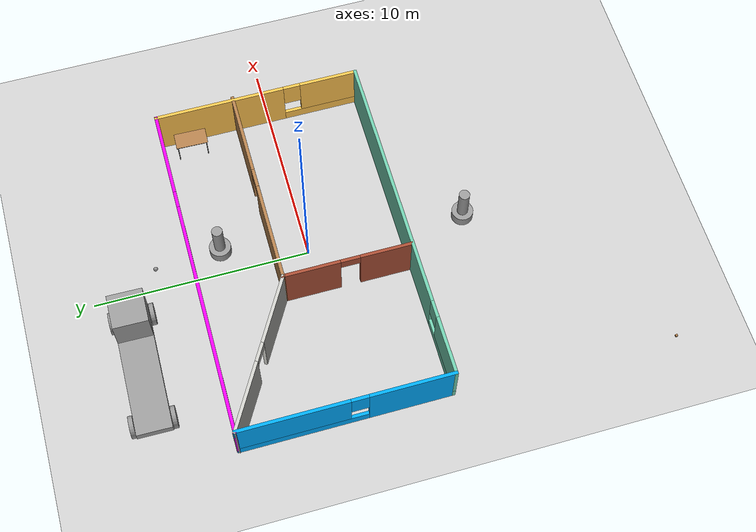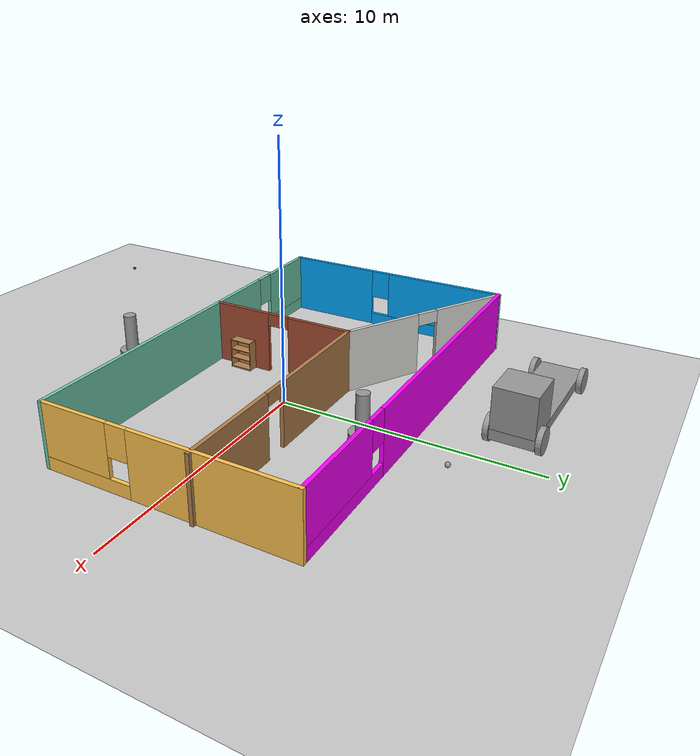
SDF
<sdf version="1.6">
 <world name="default">
  <plugin name="hello_world" filename="libhello_world.so"/>
  <light name="sun" type="directional">
   <pose>0 0 10 0 -0 0</pose>
   <diffuse>0.8 0.8 0.8 1</diffuse>
   <specular>0.2 0.2 0.2 1</specular>
   <attenuation>
    <range>1000</range>
    <constant>0.9</constant>
    <linear>0.01</linear>
    <quadratic>0.001</quadratic>
   </attenuation>
   <direction>-0.5 0.1 -0.9</direction>
  </light>
  <model name="ground_plane">
   <static>1</static>
   <link name="link">
    <collision name="collision">
     <geometry><plane><normal>0 0 1</normal><size>100 100</size></plane></geometry>
     <surface>
      <contact><collide_bitmask>65535</collide_bitmask></contact>
      <friction><ode><mu>100</mu><mu2>50</mu2></ode></friction>
     </surface>
    </collision>
    <visual name="visual">
     <cast_shadows>0</cast_shadows>
     <geometry><plane><normal>0 0 1</normal><size>100 100</size></plane></geometry>
     <material>
      <script><uri>file://media/materials/scripts/gazebo.material</uri><name>Gazebo/Grey</name></script>
     </material>
    </visual>
   </link>
  </model>
  <gravity>0 0 -9.8</gravity>
  <magnetic_field>6e-06 2.3e-05 -4.2e-05</magnetic_field>
  <atmosphere type="adiabatic"/>
  <physics name="default_physics" default="0" type="ode">
   <max_step_size>0.001</max_step_size>
   <real_time_factor>1</real_time_factor>
   <real_time_update_rate>1000</real_time_update_rate>
  </physics>
  <scene><ambient>0.4 0.4 0.4 1</ambient><background>0.7 0.7 0.7 1</background><shadows>1</shadows></scene>
  <spherical_coordinates>
   <surface_model>EARTH_WGS84</surface_model>
   <latitude_deg>0</latitude_deg>
   <longitude_deg>0</longitude_deg>
   <elevation>0</elevation>
   <heading_deg>0</heading_deg>
  </spherical_coordinates>
  <model name="truck">
   <link name="link_0">
    <pose>-2e-06 -3e-06 1 0 -0 0</pose>
    <inertial>
     <mass>1</mass>
     <inertia>
      <ixx>0.166667</ixx>
      <ixy>0</ixy>
      <ixz>0</ixz>
      <iyy>0.166667</iyy>
      <iyz>0</iyz>
      <izz>0.166667</izz>
     </inertia>
    </inertial>
    <visual name="visual">
     <geometry><box><size>1.6 1.6 1.6</size></box></geometry>
     <material>
      <lighting>1</lighting>
      <script><uri>file://media/materials/scripts/gazebo.material</uri><name>Gazebo/Grey</name></script>
      <shader type="pixel"><normal_map>__default__</normal_map></shader>
      <ambient>0.3 0.3 0.3 1</ambient>
      <diffuse>0.7 0.7 0.7 1</diffuse>
      <specular>0.01 0.01 0.01 1</specular>
      <emissive>0 0 0 1</emissive>
     </material>
    </visual>
    <collision name="collision">
     <geometry><box><size>1.6 1.6 1.6</size></box></geometry>
     <surface>
      <friction>
       <ode><mu>1</mu><mu2>1</mu2><fdir1>0 0 0</fdir1><slip1>0</slip1><slip2>0</slip2></ode>
       <torsional>
        <coefficient>1</coefficient>
        <patch_radius>0</patch_radius>
        <surface_radius>0</surface_radius>
        <use_patch_radius>1</use_patch_radius>
        <ode><slip>0</slip></ode>
       </torsional>
      </friction>
      <bounce><restitution_coefficient>0</restitution_coefficient><threshold>1e+06</threshold></bounce>
      <contact>
       <collide_without_contact>0</collide_without_contact>
       <collide_without_contact_bitmask>1</collide_without_contact_bitmask>
       <collide_bitmask>1</collide_bitmask>
       <ode>
        <soft_cfm>0</soft_cfm>
        <soft_erp>0.2</soft_erp>
        <kp>1e+13</kp>
        <kd>1</kd>
        <max_vel>0.01</max_vel>
        <min_depth>0</min_depth>
       </ode>
       <bullet>
        <split_impulse>1</split_impulse>
        <split_impulse_penetration_threshold>-0.01</split_impulse_penetration_threshold>
        <soft_cfm>0</soft_cfm>
        <soft_erp>0.2</soft_erp>
        <kp>1e+13</kp>
        <kd>1</kd>
       </bullet>
      </contact>
     </surface>
    </collision>
   </link>
   <link name="link_1">
    <pose>-2e-06 2.2 0 0 -0 0</pose>
    <inertial>
     <mass>1</mass>
     <inertia>
      <ixx>0.166667</ixx>
      <ixy>0</ixy>
      <ixz>0</ixz>
      <iyy>0.166667</iyy>
      <iyz>0</iyz>
      <izz>0.166667</izz>
     </inertia>
    </inertial>
    <visual name="visual">
     <geometry><box><size>1.6 6 0.4</size></box></geometry>
     <material>
      <lighting>1</lighting>
      <script><uri>file://media/materials/scripts/gazebo.material</uri><name>Gazebo/Grey</name></script>
      <shader type="pixel"><normal_map>__default__</normal_map></shader>
      <ambient>0.3 0.3 0.3 1</ambient>
      <diffuse>0.7 0.7 0.7 1</diffuse>
      <specular>0.01 0.01 0.01 1</specular>
      <emissive>0 0 0 1</emissive>
     </material>
    </visual>
    <collision name="collision">
     <geometry><box><size>1.6 6 0.4</size></box></geometry>
     <surface>
      <friction>
       <ode><mu>1</mu><mu2>1</mu2><fdir1>0 0 0</fdir1><slip1>0</slip1><slip2>0</slip2></ode>
       <torsional>
        <coefficient>1</coefficient>
        <patch_radius>0</patch_radius>
        <surface_radius>0</surface_radius>
        <use_patch_radius>1</use_patch_radius>
        <ode><slip>0</slip></ode>
       </torsional>
      </friction>
      <bounce><restitution_coefficient>0</restitution_coefficient><threshold>1e+06</threshold></bounce>
      <contact>
       <collide_without_contact>0</collide_without_contact>
       <collide_without_contact_bitmask>1</collide_without_contact_bitmask>
       <collide_bitmask>1</collide_bitmask>
       <ode>
        <soft_cfm>0</soft_cfm>
        <soft_erp>0.2</soft_erp>
        <kp>1e+13</kp>
        <kd>1</kd>
        <max_vel>0.01</max_vel>
        <min_depth>0</min_depth>
       </ode>
       <bullet>
        <split_impulse>1</split_impulse>
        <split_impulse_penetration_threshold>-0.01</split_impulse_penetration_threshold>
        <soft_cfm>0</soft_cfm>
        <soft_erp>0.2</soft_erp>
        <kp>1e+13</kp>
        <kd>1</kd>
       </bullet>
      </contact>
     </surface>
    </collision>
   </link>
   <link name="link_2">
    <pose>0.900094 -0.299986 -2e-06 1.5707 0 1.5707</pose>
    <inertial>
     <mass>1</mass>
     <inertia><ixx>0.145833</ixx><ixy>0</ixy><ixz>0</ixz><iyy>0.145833</iyy><iyz>0</iyz><izz>0.125</izz></inertia>
    </inertial>
    <visual name="visual">
     <geometry><cylinder><radius>0.5</radius><length>0.2</length></cylinder></geometry>
     <material>
      <lighting>1</lighting>
      <script><uri>file://media/materials/scripts/gazebo.material</uri><name>Gazebo/Grey</name></script>
      <shader type="pixel"><normal_map>__default__</normal_map></shader>
      <ambient>0.3 0.3 0.3 1</ambient>
      <diffuse>0.7 0.7 0.7 1</diffuse>
      <specular>0.01 0.01 0.01 1</specular>
      <emissive>0 0 0 1</emissive>
     </material>
    </visual>
    <collision name="collision">
     <geometry><cylinder><radius>0.5</radius><length>0.2</length></cylinder></geometry>
     <surface>
      <friction>
       <ode><mu>1</mu><mu2>1</mu2><fdir1>0 0 0</fdir1><slip1>0</slip1><slip2>0</slip2></ode>
       <torsional>
        <coefficient>1</coefficient>
        <patch_radius>0</patch_radius>
        <surface_radius>0</surface_radius>
        <use_patch_radius>1</use_patch_radius>
        <ode><slip>0</slip></ode>
       </torsional>
      </friction>
      <bounce><restitution_coefficient>0</restitution_coefficient><threshold>1e+06</threshold></bounce>
      <contact>
       <collide_without_contact>0</collide_without_contact>
       <collide_without_contact_bitmask>1</collide_without_contact_bitmask>
       <collide_bitmask>1</collide_bitmask>
       <ode>
        <soft_cfm>0</soft_cfm>
        <soft_erp>0.2</soft_erp>
        <kp>1e+13</kp>
        <kd>1</kd>
        <max_vel>0.01</max_vel>
        <min_depth>0</min_depth>
       </ode>
       <bullet>
        <split_impulse>1</split_impulse>
        <split_impulse_penetration_threshold>-0.01</split_impulse_penetration_threshold>
        <soft_cfm>0</soft_cfm>
        <soft_erp>0.2</soft_erp>
        <kp>1e+13</kp>
        <kd>1</kd>
       </bullet>
      </contact>
     </surface>
    </collision>
   </link>
   <link name="link_2_clone">
    <pose>-0.940098 -0.299986 -2e-06 1.5707 0 1.5707</pose>
    <inertial>
     <mass>1</mass>
     <inertia><ixx>0.145833</ixx><ixy>0</ixy><ixz>0</ixz><iyy>0.145833</iyy><iyz>0</iyz><izz>0.125</izz></inertia>
    </inertial>
    <visual name="visual">
     <geometry><cylinder><radius>0.5</radius><length>0.2</length></cylinder></geometry>
     <material>
      <lighting>1</lighting>
      <script><uri>file://media/materials/scripts/gazebo.material</uri><name>Gazebo/Grey</name></script>
      <shader type="pixel"><normal_map>__default__</normal_map></shader>
      <ambient>0.3 0.3 0.3 1</ambient>
      <diffuse>0.7 0.7 0.7 1</diffuse>
      <specular>0.01 0.01 0.01 1</specular>
      <emissive>0 0 0 1</emissive>
     </material>
    </visual>
    <collision name="collision">
     <geometry><cylinder><radius>0.5</radius><length>0.2</length></cylinder></geometry>
     <surface>
      <friction>
       <ode><mu>1</mu><mu2>1</mu2><fdir1>0 0 0</fdir1><slip1>0</slip1><slip2>0</slip2></ode>
       <torsional>
        <coefficient>1</coefficient>
        <patch_radius>0</patch_radius>
        <surface_radius>0</surface_radius>
        <use_patch_radius>1</use_patch_radius>
        <ode><slip>0</slip></ode>
       </torsional>
      </friction>
      <bounce><restitution_coefficient>0</restitution_coefficient><threshold>1e+06</threshold></bounce>
      <contact>
       <collide_without_contact>0</collide_without_contact>
       <collide_without_contact_bitmask>1</collide_without_contact_bitmask>
       <collide_bitmask>1</collide_bitmask>
       <ode>
        <soft_cfm>0</soft_cfm>
        <soft_erp>0.2</soft_erp>
        <kp>1e+13</kp>
        <kd>1</kd>
        <max_vel>0.01</max_vel>
        <min_depth>0</min_depth>
       </ode>
       <bullet>
        <split_impulse>1</split_impulse>
        <split_impulse_penetration_threshold>-0.01</split_impulse_penetration_threshold>
        <soft_cfm>0</soft_cfm>
        <soft_erp>0.2</soft_erp>
        <kp>1e+13</kp>
        <kd>1</kd>
       </bullet>
      </contact>
     </surface>
    </collision>
   </link>
   <link name="link_2_clone_0">
    <pose>-0.940098 4.69999 -2e-06 1.5707 0 1.5707</pose>
    <inertial>
     <mass>1</mass>
     <inertia><ixx>0.145833</ixx><ixy>0</ixy><ixz>0</ixz><iyy>0.145833</iyy><iyz>0</iyz><izz>0.125</izz></inertia>
    </inertial>
    <visual name="visual">
     <geometry><cylinder><radius>0.5</radius><length>0.2</length></cylinder></geometry>
     <material>
      <lighting>1</lighting>
      <script><uri>file://media/materials/scripts/gazebo.material</uri><name>Gazebo/Grey</name></script>
      <shader type="pixel"><normal_map>__default__</normal_map></shader>
      <ambient>0.3 0.3 0.3 1</ambient>
      <diffuse>0.7 0.7 0.7 1</diffuse>
      <specular>0.01 0.01 0.01 1</specular>
      <emissive>0 0 0 1</emissive>
     </material>
    </visual>
    <collision name="collision">
     <geometry><cylinder><radius>0.5</radius><length>0.2</length></cylinder></geometry>
     <surface>
      <friction>
       <ode><mu>1</mu><mu2>1</mu2><fdir1>0 0 0</fdir1><slip1>0</slip1><slip2>0</slip2></ode>
       <torsional>
        <coefficient>1</coefficient>
        <patch_radius>0</patch_radius>
        <surface_radius>0</surface_radius>
        <use_patch_radius>1</use_patch_radius>
        <ode><slip>0</slip></ode>
       </torsional>
      </friction>
      <bounce><restitution_coefficient>0</restitution_coefficient><threshold>1e+06</threshold></bounce>
      <contact>
       <collide_without_contact>0</collide_without_contact>
       <collide_without_contact_bitmask>1</collide_without_contact_bitmask>
       <collide_bitmask>1</collide_bitmask>
       <ode>
        <soft_cfm>0</soft_cfm>
        <soft_erp>0.2</soft_erp>
        <kp>1e+13</kp>
        <kd>1</kd>
        <max_vel>0.01</max_vel>
        <min_depth>0</min_depth>
       </ode>
       <bullet>
        <split_impulse>1</split_impulse>
        <split_impulse_penetration_threshold>-0.01</split_impulse_penetration_threshold>
        <soft_cfm>0</soft_cfm>
        <soft_erp>0.2</soft_erp>
        <kp>1e+13</kp>
        <kd>1</kd>
       </bullet>
      </contact>
     </surface>
    </collision>
   </link>
   <link name="link_2_clone_1">
    <pose>0.900094 4.69999 -2e-06 1.5707 0 1.5707</pose>
    <inertial>
     <mass>1</mass>
     <inertia><ixx>0.145833</ixx><ixy>0</ixy><ixz>0</ixz><iyy>0.145833</iyy><iyz>0</iyz><izz>0.125</izz></inertia>
    </inertial>
    <visual name="visual">
     <geometry><cylinder><radius>0.5</radius><length>0.2</length></cylinder></geometry>
     <material>
      <lighting>1</lighting>
      <script><uri>file://media/materials/scripts/gazebo.material</uri><name>Gazebo/Grey</name></script>
      <shader type="pixel"><normal_map>__default__</normal_map></shader>
      <ambient>0.3 0.3 0.3 1</ambient>
      <diffuse>0.7 0.7 0.7 1</diffuse>
      <specular>0.01 0.01 0.01 1</specular>
      <emissive>0 0 0 1</emissive>
     </material>
    </visual>
    <collision name="collision">
     <geometry><cylinder><radius>0.5</radius><length>0.2</length></cylinder></geometry>
     <surface>
      <friction>
       <ode><mu>1</mu><mu2>1</mu2><fdir1>0 0 0</fdir1><slip1>0</slip1><slip2>0</slip2></ode>
       <torsional>
        <coefficient>1</coefficient>
        <patch_radius>0</patch_radius>
        <surface_radius>0</surface_radius>
        <use_patch_radius>1</use_patch_radius>
        <ode><slip>0</slip></ode>
       </torsional>
      </friction>
      <bounce><restitution_coefficient>0</restitution_coefficient><threshold>1e+06</threshold></bounce>
      <contact>
       <collide_without_contact>0</collide_without_contact>
       <collide_without_contact_bitmask>1</collide_without_contact_bitmask>
       <collide_bitmask>1</collide_bitmask>
       <ode>
        <soft_cfm>0</soft_cfm>
        <soft_erp>0.2</soft_erp>
        <kp>1e+13</kp>
        <kd>1</kd>
        <max_vel>0.01</max_vel>
        <min_depth>0</min_depth>
       </ode>
       <bullet>
        <split_impulse>1</split_impulse>
        <split_impulse_penetration_threshold>-0.01</split_impulse_penetration_threshold>
        <soft_cfm>0</soft_cfm>
        <soft_erp>0.2</soft_erp>
        <kp>1e+13</kp>
        <kd>1</kd>
       </bullet>
      </contact>
     </surface>
    </collision>
   </link>
   <joint name="link_0_JOINT_1" type="fixed">
    <parent>link_0</parent>
    <child>link_1</child>
    <physics>
     <ode><limit><cfm>0</cfm><erp>0.2</erp></limit><suspension><cfm>0</cfm><erp>0.2</erp></suspension></ode>
    </physics>
   </joint>
   <joint name="link_1_JOINT_1" type="revolute">
    <parent>link_1</parent>
    <child>link_2</child>
    <axis>
     <xyz>0 0 1</xyz>
     <use_parent_model_frame>0</use_parent_model_frame>
     <limit>
      <lower>-1.79769e+308</lower>
      <upper>1.79769e+308</upper>
      <effort>-1</effort>
      <velocity>-1</velocity>
     </limit>
     <dynamics>
      <spring_reference>0</spring_reference>
      <spring_stiffness>0</spring_stiffness>
      <damping>0</damping>
      <friction>0</friction>
     </dynamics>
    </axis>
    <physics>
     <ode><limit><cfm>0</cfm><erp>0.2</erp></limit><suspension><cfm>0</cfm><erp>0.2</erp></suspension></ode>
    </physics>
   </joint>
   <joint name="link_1_JOINT_2" type="revolute">
    <parent>link_1</parent>
    <child>link_2_clone_1</child>
    <axis>
     <xyz>0 0 1</xyz>
     <use_parent_model_frame>0</use_parent_model_frame>
     <limit>
      <lower>-1.79769e+308</lower>
      <upper>1.79769e+308</upper>
      <effort>-1</effort>
      <velocity>-1</velocity>
     </limit>
     <dynamics>
      <spring_reference>0</spring_reference>
      <spring_stiffness>0</spring_stiffness>
      <damping>0</damping>
      <friction>0</friction>
     </dynamics>
    </axis>
    <physics>
     <ode><limit><cfm>0</cfm><erp>0.2</erp></limit><suspension><cfm>0</cfm><erp>0.2</erp></suspension></ode>
    </physics>
   </joint>
   <joint name="link_1_JOINT_3" type="revolute">
    <parent>link_1</parent>
    <child>link_2_clone</child>
    <axis>
     <xyz>0 0 1</xyz>
     <use_parent_model_frame>0</use_parent_model_frame>
     <limit>
      <lower>-1.79769e+308</lower>
      <upper>1.79769e+308</upper>
      <effort>-1</effort>
      <velocity>-1</velocity>
     </limit>
     <dynamics>
      <spring_reference>0</spring_reference>
      <spring_stiffness>0</spring_stiffness>
      <damping>0</damping>
      <friction>0</friction>
     </dynamics>
    </axis>
    <physics>
     <ode><limit><cfm>0</cfm><erp>0.2</erp></limit><suspension><cfm>0</cfm><erp>0.2</erp></suspension></ode>
    </physics>
   </joint>
   <joint name="link_1_JOINT_4" type="revolute">
    <parent>link_1</parent>
    <child>link_2_clone_0</child>
    <axis>
     <xyz>0 0 1</xyz>
     <use_parent_model_frame>0</use_parent_model_frame>
     <limit>
      <lower>-1.79769e+308</lower>
      <upper>1.79769e+308</upper>
      <effort>-1</effort>
      <velocity>-1</velocity>
     </limit>
     <dynamics>
      <spring_reference>0</spring_reference>
      <spring_stiffness>0</spring_stiffness>
      <damping>0</damping>
      <friction>0</friction>
     </dynamics>
    </axis>
    <physics>
     <ode><limit><cfm>0</cfm><erp>0.2</erp></limit><suspension><cfm>0</cfm><erp>0.2</erp></suspension></ode>
    </physics>
   </joint>
   <static>0</static>
   <pose>-1.58891 8.46407 0.500005 0 4e-06 1.55363</pose>
  </model>
  <model name="lidar_feature_1">
   <link name="link_0">
    <pose>0 0 -0.5 0 -0 0</pose>
    <inertial>
     <mass>1</mass>
     <inertia><ixx>0.145833</ixx><ixy>0</ixy><ixz>0</ixz><iyy>0.145833</iyy><iyz>0</iyz><izz>0.125</izz></inertia>
    </inertial>
    <visual name="visual">
     <geometry><cylinder><radius>0.5</radius><length>0.5</length></cylinder></geometry>
     <material>
      <lighting>1</lighting>
      <script><uri>file://media/materials/scripts/gazebo.material</uri><name>Gazebo/Grey</name></script>
      <shader type="pixel"><normal_map>__default__</normal_map></shader>
      <ambient>0.3 0.3 0.3 1</ambient>
      <diffuse>0.7 0.7 0.7 1</diffuse>
      <specular>0.01 0.01 0.01 1</specular>
      <emissive>0 0 0 1</emissive>
     </material>
    </visual>
    <collision name="collision">
     <geometry><cylinder><radius>0.5</radius><length>0.5</length></cylinder></geometry>
     <surface>
      <friction>
       <ode><mu>1</mu><mu2>1</mu2><fdir1>0 0 0</fdir1><slip1>0</slip1><slip2>0</slip2></ode>
       <torsional>
        <coefficient>1</coefficient>
        <patch_radius>0</patch_radius>
        <surface_radius>0</surface_radius>
        <use_patch_radius>1</use_patch_radius>
        <ode><slip>0</slip></ode>
       </torsional>
      </friction>
      <bounce><restitution_coefficient>0</restitution_coefficient><threshold>1e+06</threshold></bounce>
      <contact>
       <collide_without_contact>0</collide_without_contact>
       <collide_without_contact_bitmask>1</collide_without_contact_bitmask>
       <collide_bitmask>1</collide_bitmask>
       <ode>
        <soft_cfm>0</soft_cfm>
        <soft_erp>0.2</soft_erp>
        <kp>1e+13</kp>
        <kd>1</kd>
        <max_vel>0.01</max_vel>
        <min_depth>0</min_depth>
       </ode>
       <bullet>
        <split_impulse>1</split_impulse>
        <split_impulse_penetration_threshold>-0.01</split_impulse_penetration_threshold>
        <soft_cfm>0</soft_cfm>
        <soft_erp>0.2</soft_erp>
        <kp>1e+13</kp>
        <kd>1</kd>
       </bullet>
      </contact>
     </surface>
    </collision>
   </link>
   <link name="link_0_clone">
    <pose>0 0 0.5 0 -0 0</pose>
    <inertial>
     <mass>1</mass>
     <inertia><ixx>0.145833</ixx><ixy>0</ixy><ixz>0</ixz><iyy>0.145833</iyy><iyz>0</iyz><izz>0.125</izz></inertia>
    </inertial>
    <visual name="visual">
     <geometry><cylinder><radius>0.25</radius><length>1.5</length></cylinder></geometry>
     <material>
      <lighting>1</lighting>
      <script><uri>file://media/materials/scripts/gazebo.material</uri><name>Gazebo/Grey</name></script>
      <shader type="pixel"><normal_map>__default__</normal_map></shader>
      <ambient>0.3 0.3 0.3 1</ambient>
      <diffuse>0.7 0.7 0.7 1</diffuse>
      <specular>0.01 0.01 0.01 1</specular>
      <emissive>0 0 0 1</emissive>
     </material>
    </visual>
    <collision name="collision">
     <geometry><cylinder><radius>0.25</radius><length>1.5</length></cylinder></geometry>
     <surface>
      <friction>
       <ode><mu>1</mu><mu2>1</mu2><fdir1>0 0 0</fdir1><slip1>0</slip1><slip2>0</slip2></ode>
       <torsional>
        <coefficient>1</coefficient>
        <patch_radius>0</patch_radius>
        <surface_radius>0</surface_radius>
        <use_patch_radius>1</use_patch_radius>
        <ode><slip>0</slip></ode>
       </torsional>
      </friction>
      <bounce><restitution_coefficient>0</restitution_coefficient><threshold>1e+06</threshold></bounce>
      <contact>
       <collide_without_contact>0</collide_without_contact>
       <collide_without_contact_bitmask>1</collide_without_contact_bitmask>
       <collide_bitmask>1</collide_bitmask>
       <ode>
        <soft_cfm>0</soft_cfm>
        <soft_erp>0.2</soft_erp>
        <kp>1e+13</kp>
        <kd>1</kd>
        <max_vel>0.01</max_vel>
        <min_depth>0</min_depth>
       </ode>
       <bullet>
        <split_impulse>1</split_impulse>
        <split_impulse_penetration_threshold>-0.01</split_impulse_penetration_threshold>
        <soft_cfm>0</soft_cfm>
        <soft_erp>0.2</soft_erp>
        <kp>1e+13</kp>
        <kd>1</kd>
       </bullet>
      </contact>
     </surface>
    </collision>
   </link>
   <joint name="link_0_JOINT_0" type="fixed">
    <parent>link_0</parent>
    <child>link_0_clone</child>
    <physics>
     <ode><limit><cfm>0</cfm><erp>0.2</erp></limit><suspension><cfm>0</cfm><erp>0.2</erp></suspension></ode>
    </physics>
   </joint>
   <static>0</static>
   <pose>1.17572 3.87574 0.75 0 -0 0</pose>
  </model>
  <model name="lidar_feature_2">
   <link name="link_0">
    <pose>0 0 -0.5 0 -0 0</pose>
    <inertial>
     <mass>1</mass>
     <inertia><ixx>0.145833</ixx><ixy>0</ixy><ixz>0</ixz><iyy>0.145833</iyy><iyz>0</iyz><izz>0.125</izz></inertia>
    </inertial>
    <visual name="visual">
     <geometry><cylinder><radius>0.5</radius><length>0.5</length></cylinder></geometry>
     <material>
      <lighting>1</lighting>
      <script><uri>file://media/materials/scripts/gazebo.material</uri><name>Gazebo/Grey</name></script>
      <shader type="pixel"><normal_map>__default__</normal_map></shader>
      <ambient>0.3 0.3 0.3 1</ambient>
      <diffuse>0.7 0.7 0.7 1</diffuse>
      <specular>0.01 0.01 0.01 1</specular>
      <emissive>0 0 0 1</emissive>
     </material>
    </visual>
    <collision name="collision">
     <geometry><cylinder><radius>0.5</radius><length>0.5</length></cylinder></geometry>
     <surface>
      <friction>
       <ode><mu>1</mu><mu2>1</mu2><fdir1>0 0 0</fdir1><slip1>0</slip1><slip2>0</slip2></ode>
       <torsional>
        <coefficient>1</coefficient>
        <patch_radius>0</patch_radius>
        <surface_radius>0</surface_radius>
        <use_patch_radius>1</use_patch_radius>
        <ode><slip>0</slip></ode>
       </torsional>
      </friction>
      <bounce><restitution_coefficient>0</restitution_coefficient><threshold>1e+06</threshold></bounce>
      <contact>
       <collide_without_contact>0</collide_without_contact>
       <collide_without_contact_bitmask>1</collide_without_contact_bitmask>
       <collide_bitmask>1</collide_bitmask>
       <ode>
        <soft_cfm>0</soft_cfm>
        <soft_erp>0.2</soft_erp>
        <kp>1e+13</kp>
        <kd>1</kd>
        <max_vel>0.01</max_vel>
        <min_depth>0</min_depth>
       </ode>
       <bullet>
        <split_impulse>1</split_impulse>
        <split_impulse_penetration_threshold>-0.01</split_impulse_penetration_threshold>
        <soft_cfm>0</soft_cfm>
        <soft_erp>0.2</soft_erp>
        <kp>1e+13</kp>
        <kd>1</kd>
       </bullet>
      </contact>
     </surface>
    </collision>
   </link>
   <link name="link_0_clone">
    <pose>0 0 0.5 0 -0 0</pose>
    <inertial>
     <mass>1</mass>
     <inertia><ixx>0.145833</ixx><ixy>0</ixy><ixz>0</ixz><iyy>0.145833</iyy><iyz>0</iyz><izz>0.125</izz></inertia>
    </inertial>
    <visual name="visual">
     <geometry><cylinder><radius>0.25</radius><length>1.5</length></cylinder></geometry>
     <material>
      <lighting>1</lighting>
      <script><uri>file://media/materials/scripts/gazebo.material</uri><name>Gazebo/Grey</name></script>
      <shader type="pixel"><normal_map>__default__</normal_map></shader>
      <ambient>0.3 0.3 0.3 1</ambient>
      <diffuse>0.7 0.7 0.7 1</diffuse>
      <specular>0.01 0.01 0.01 1</specular>
      <emissive>0 0 0 1</emissive>
     </material>
    </visual>
    <collision name="collision">
     <geometry><cylinder><radius>0.25</radius><length>1.5</length></cylinder></geometry>
     <surface>
      <friction>
       <ode><mu>1</mu><mu2>1</mu2><fdir1>0 0 0</fdir1><slip1>0</slip1><slip2>0</slip2></ode>
       <torsional>
        <coefficient>1</coefficient>
        <patch_radius>0</patch_radius>
        <surface_radius>0</surface_radius>
        <use_patch_radius>1</use_patch_radius>
        <ode><slip>0</slip></ode>
       </torsional>
      </friction>
      <bounce><restitution_coefficient>0</restitution_coefficient><threshold>1e+06</threshold></bounce>
      <contact>
       <collide_without_contact>0</collide_without_contact>
       <collide_without_contact_bitmask>1</collide_without_contact_bitmask>
       <collide_bitmask>1</collide_bitmask>
       <ode>
        <soft_cfm>0</soft_cfm>
        <soft_erp>0.2</soft_erp>
        <kp>1e+13</kp>
        <kd>1</kd>
        <max_vel>0.01</max_vel>
        <min_depth>0</min_depth>
       </ode>
       <bullet>
        <split_impulse>1</split_impulse>
        <split_impulse_penetration_threshold>-0.01</split_impulse_penetration_threshold>
        <soft_cfm>0</soft_cfm>
        <soft_erp>0.2</soft_erp>
        <kp>1e+13</kp>
        <kd>1</kd>
       </bullet>
      </contact>
     </surface>
    </collision>
   </link>
   <joint name="link_0_JOINT_0" type="fixed">
    <parent>link_0</parent>
    <child>link_0_clone</child>
    <physics>
     <ode><limit><cfm>0</cfm><erp>0.2</erp></limit><suspension><cfm>0</cfm><erp>0.2</erp></suspension></ode>
    </physics>
   </joint>
   <static>0</static>
   <pose>-0.05482 -7.38299 0.75 0 0 -0.001223</pose>
  </model>
  <model name="my_ball">
   <link name="link_0">
    <inertial>
     <mass>1</mass>
     <inertia><ixx>0.1</ixx><ixy>0</ixy><ixz>0</ixz><iyy>0.1</iyy><iyz>0</iyz><izz>0.1</izz></inertia>
    </inertial>
    <visual name="visual">
     <geometry><sphere><radius>0.1</radius></sphere></geometry>
     <material>
      <lighting>1</lighting>
      <script><uri>file://media/materials/scripts/gazebo.material</uri><name>Gazebo/Grey</name></script>
      <shader type="pixel"><normal_map>__default__</normal_map></shader>
      <ambient>1 1 1 1</ambient>
      <diffuse>1 1 1 1</diffuse>
      <specular>1 1 1 1</specular>
      <emissive>1 1 1 1</emissive>
     </material>
    </visual>
    <collision name="collision">
     <geometry><sphere><radius>0.1</radius></sphere></geometry>
     <surface>
      <friction>
       <ode><mu>1</mu><mu2>1</mu2><fdir1>0 0 0</fdir1><slip1>0</slip1><slip2>0</slip2></ode>
       <torsional>
        <coefficient>1</coefficient>
        <patch_radius>0</patch_radius>
        <surface_radius>0</surface_radius>
        <use_patch_radius>1</use_patch_radius>
        <ode><slip>0</slip></ode>
       </torsional>
      </friction>
      <bounce><restitution_coefficient>0</restitution_coefficient><threshold>1e+06</threshold></bounce>
      <contact>
       <collide_without_contact>0</collide_without_contact>
       <collide_without_contact_bitmask>1</collide_without_contact_bitmask>
       <collide_bitmask>1</collide_bitmask>
       <ode>
        <soft_cfm>0</soft_cfm>
        <soft_erp>0.2</soft_erp>
        <kp>1e+13</kp>
        <kd>1</kd>
        <max_vel>0.01</max_vel>
        <min_depth>0</min_depth>
       </ode>
       <bullet>
        <split_impulse>1</split_impulse>
        <split_impulse_penetration_threshold>-0.01</split_impulse_penetration_threshold>
        <soft_cfm>0</soft_cfm>
        <soft_erp>0.2</soft_erp>
        <kp>1e+13</kp>
        <kd>1</kd>
       </bullet>
      </contact>
     </surface>
    </collision>
   </link>
   <static>0</static>
   <pose>1.05556 6.95179 0.1 0 -0 0</pose>
  </model>
  <model name="wood_cube_10cm_clone">
   <link name="link">
    <pose>0 0 0.05 0 -0 0</pose>
    <inertial>
     <mass>0.5167</mass>
     <inertia>
      <ixx>0.000861167</ixx>
      <ixy>0</ixy>
      <ixz>0</ixz>
      <iyy>0.000861167</iyy>
      <iyz>0</iyz>
      <izz>0.000861167</izz>
     </inertia>
    </inertial>
    <collision name="collision">
     <geometry><box><size>0.1 0.1 0.1</size></box></geometry>
     <surface>
      <contact>
       <poissons_ratio>0.347</poissons_ratio>
       <elastic_modulus>8.8e+09</elastic_modulus>
       <ode><kp>100000</kp><kd>100</kd><max_vel>100</max_vel><min_depth>0.001</min_depth></ode>
      </contact>
      <friction>
       <torsional>
        <coefficient>1</coefficient>
        <use_patch_radius>0</use_patch_radius>
        <surface_radius>0.01</surface_radius>
       </torsional>
      </friction>
     </surface>
    </collision>
    <visual name="visual">
     <geometry><box><size>0.1 0.1 0.1</size></box></geometry>
     <material>
      <script><uri>file://media/materials/scripts/gazebo.material</uri><name>Gazebo/Wood</name></script>
     </material>
    </visual>
   </link>
   <pose>-8.49094 -14.7422 -0.001013 0 -0 0</pose>
  </model>
  <model name="bookshelf">
   <static>1</static>
   <link name="link">
    <inertial><mass>1</mass></inertial>
    <collision name="back">
     <pose>0 0.005 0.6 0 -0 0</pose>
     <geometry><box><size>0.9 0.01 1.2</size></box></geometry>
    </collision>
    <visual name="visual1">
     <pose>0 0.005 0.6 0 -0 0</pose>
     <geometry><box><size>0.9 0.01 1.2</size></box></geometry>
     <material>
      <script><uri>file://media/materials/scripts/gazebo.material</uri><name>Gazebo/Wood</name></script>
     </material>
    </visual>
    <collision name="left_side">
     <pose>0.45 -0.195 0.6 0 -0 0</pose>
     <geometry><box><size>0.02 0.4 1.2</size></box></geometry>
    </collision>
    <visual name="visual2">
     <pose>0.45 -0.195 0.6 0 -0 0</pose>
     <geometry><box><size>0.02 0.4 1.2</size></box></geometry>
     <material>
      <script><uri>file://media/materials/scripts/gazebo.material</uri><name>Gazebo/Wood</name></script>
     </material>
    </visual>
    <collision name="right_side">
     <pose>-0.45 -0.195 0.6 0 -0 0</pose>
     <geometry><box><size>0.02 0.4 1.2</size></box></geometry>
    </collision>
    <visual name="visual3">
     <pose>-0.45 -0.195 0.6 0 -0 0</pose>
     <geometry><box><size>0.02 0.4 1.2</size></box></geometry>
     <material>
      <script><uri>file://media/materials/scripts/gazebo.material</uri><name>Gazebo/Wood</name></script>
     </material>
    </visual>
    <collision name="bottom">
     <pose>0 -0.195 0.03 0 -0 0</pose>
     <geometry><box><size>0.88 0.4 0.06</size></box></geometry>
    </collision>
    <visual name="visual4">
     <pose>0 -0.195 0.03 0 -0 0</pose>
     <geometry><box><size>0.88 0.4 0.06</size></box></geometry>
     <material>
      <script><uri>file://media/materials/scripts/gazebo.material</uri><name>Gazebo/Wood</name></script>
     </material>
    </visual>
    <collision name="top">
     <pose>0 -0.195 1.19 0 -0 0</pose>
     <geometry><box><size>0.88 0.4 0.02</size></box></geometry>
    </collision>
    <visual name="visual5">
     <pose>0 -0.195 1.19 0 -0 0</pose>
     <geometry><box><size>0.88 0.4 0.02</size></box></geometry>
     <material>
      <script><uri>file://media/materials/scripts/gazebo.material</uri><name>Gazebo/Wood</name></script>
     </material>
    </visual>
    <collision name="low_shelf">
     <pose>0 -0.195 0.43 0 -0 0</pose>
     <geometry><box><size>0.88 0.4 0.02</size></box></geometry>
    </collision>
    <visual name="visual6">
     <pose>0 -0.195 0.43 0 -0 0</pose>
     <geometry><box><size>0.88 0.4 0.02</size></box></geometry>
     <material>
      <script><uri>file://media/materials/scripts/gazebo.material</uri><name>Gazebo/Wood</name></script>
     </material>
    </visual>
    <collision name="high_shelf">
     <pose>0 -0.195 0.8 0 -0 0</pose>
     <geometry><box><size>0.88 0.4 0.02</size></box></geometry>
    </collision>
    <visual name="visual7">
     <pose>0 -0.195 0.8 0 -0 0</pose>
     <geometry><box><size>0.88 0.4 0.02</size></box></geometry>
     <material>
      <script><uri>file://media/materials/scripts/gazebo.material</uri><name>Gazebo/Wood</name></script>
     </material>
    </visual>
   </link>
   <pose>-1.93261 -3.01045 0 0 -0 1.54669</pose>
  </model>
  <model name="table">
   <static>1</static>
   <link name="link">
    <collision name="surface">
     <pose>0 0 1 0 -0 0</pose>
     <geometry><box><size>1.5 0.8 0.03</size></box></geometry>
     <surface><friction><ode><mu>0.6</mu><mu2>0.6</mu2></ode></friction></surface>
    </collision>
    <visual name="visual1">
     <pose>0 0 1 0 -0 0</pose>
     <geometry><box><size>1.5 0.8 0.03</size></box></geometry>
     <material>
      <script><uri>file://media/materials/scripts/gazebo.material</uri><name>Gazebo/Wood</name></script>
     </material>
    </visual>
    <collision name="front_left_leg">
     <pose>0.68 0.38 0.5 0 -0 0</pose>
     <geometry><cylinder><radius>0.02</radius><length>1</length></cylinder></geometry>
    </collision>
    <visual name="front_left_leg">
     <pose>0.68 0.38 0.5 0 -0 0</pose>
     <geometry><cylinder><radius>0.02</radius><length>1</length></cylinder></geometry>
     <material>
      <script><uri>file://media/materials/scripts/gazebo.material</uri><name>Gazebo/Grey</name></script>
     </material>
    </visual>
    <collision name="front_right_leg">
     <pose>0.68 -0.38 0.5 0 -0 0</pose>
     <geometry><cylinder><radius>0.02</radius><length>1</length></cylinder></geometry>
    </collision>
    <visual name="front_right_leg">
     <pose>0.68 -0.38 0.5 0 -0 0</pose>
     <geometry><cylinder><radius>0.02</radius><length>1</length></cylinder></geometry>
     <material>
      <script><uri>file://media/materials/scripts/gazebo.material</uri><name>Gazebo/Grey</name></script>
     </material>
    </visual>
    <collision name="back_right_leg">
     <pose>-0.68 -0.38 0.5 0 -0 0</pose>
     <geometry><cylinder><radius>0.02</radius><length>1</length></cylinder></geometry>
    </collision>
    <visual name="back_right_leg">
     <pose>-0.68 -0.38 0.5 0 -0 0</pose>
     <geometry><cylinder><radius>0.02</radius><length>1</length></cylinder></geometry>
     <material>
      <script><uri>file://media/materials/scripts/gazebo.material</uri><name>Gazebo/Grey</name></script>
     </material>
    </visual>
    <collision name="back_left_leg">
     <pose>-0.68 0.38 0.5 0 -0 0</pose>
     <geometry><cylinder><radius>0.02</radius><length>1</length></cylinder></geometry>
    </collision>
    <visual name="back_left_leg">
     <pose>-0.68 0.38 0.5 0 -0 0</pose>
     <geometry><cylinder><radius>0.02</radius><length>1</length></cylinder></geometry>
     <material>
      <script><uri>file://media/materials/scripts/gazebo.material</uri><name>Gazebo/Grey</name></script>
     </material>
    </visual>
   </link>
   <pose>6.88181 3.92493 0 0 0 -1.59722</pose>
  </model>
  <model name="Untitled_0">
   <pose>-0.412794 0.490757 0 0 -0 0</pose>
   <link name="Wall_63">
    <pose>-0.043917 4.78627 0 0 -0 0</pose>
    <visual name="Wall_63_Visual_0">
     <pose>-2.47272 0 1.25 0 -0 0</pose>
     <geometry><box><size>11.0546 0.15 2.5</size></box></geometry>
     <material>
      <script><uri>file://media/materials/scripts/gazebo.material</uri><name>Gazebo/Grey</name></script>
      <ambient>1 0 1 1</ambient>
     </material>
     <meta><layer>0</layer></meta>
    </visual>
    <collision name="Wall_63_Collision_0">
     <geometry><box><size>11.0546 0.15 2.5</size></box></geometry>
     <pose>-2.47272 0 1.25 0 -0 0</pose>
    </collision>
    <visual name="Wall_63_Visual_1">
     <pose>5.52728 0 0.25 0 -0 0</pose>
     <geometry><box><size>4.94543 0.15 0.5</size></box></geometry>
     <material>
      <script><uri>file://media/materials/scripts/gazebo.material</uri><name>Gazebo/Grey</name></script>
      <ambient>1 0 1 1</ambient>
     </material>
     <meta><layer>0</layer></meta>
    </visual>
    <collision name="Wall_63_Collision_1">
     <geometry><box><size>4.94543 0.15 0.5</size></box></geometry>
     <pose>5.52728 0 0.25 0 -0 0</pose>
    </collision>
    <visual name="Wall_63_Visual_2">
     <pose>5.92728 0 1.5 0 -0 0</pose>
     <geometry><box><size>4.14543 0.15 2</size></box></geometry>
     <material>
      <script><uri>file://media/materials/scripts/gazebo.material</uri><name>Gazebo/Grey</name></script>
      <ambient>1 0 1 1</ambient>
     </material>
     <meta><layer>0</layer></meta>
    </visual>
    <collision name="Wall_63_Collision_2">
     <geometry><box><size>4.14543 0.15 2</size></box></geometry>
     <pose>5.92728 0 1.5 0 -0 0</pose>
    </collision>
    <visual name="Wall_63_Visual_3">
     <pose>3.45457 0 1.9 0 -0 0</pose>
     <geometry><box><size>0.8 0.15 1.2</size></box></geometry>
     <material>
      <script><uri>file://media/materials/scripts/gazebo.material</uri><name>Gazebo/Grey</name></script>
      <ambient>1 0 1 1</ambient>
     </material>
     <meta><layer>0</layer></meta>
    </visual>
    <collision name="Wall_63_Collision_3">
     <geometry><box><size>0.8 0.15 1.2</size></box></geometry>
     <pose>3.45457 0 1.9 0 -0 0</pose>
    </collision>
   </link>
   <link name="Wall_64">
    <pose>7.88108 -0.013726 0 0 0 -1.5708</pose>
    <visual name="Wall_64_Visual_0">
     <pose>-1.79494 0 1.25 0 -0 0</pose>
     <geometry><box><size>6.16013 0.15 2.5</size></box></geometry>
     <material>
      <script><uri>file://media/materials/scripts/gazebo.material</uri><name>Gazebo/Grey</name></script>
      <ambient>1 0.764706 0.305882 1</ambient>
     </material>
     <meta><layer>0</layer></meta>
    </visual>
    <collision name="Wall_64_Collision_0">
     <geometry><box><size>6.16013 0.15 2.5</size></box></geometry>
     <pose>-1.79494 0 1.25 0 -0 0</pose>
    </collision>
    <visual name="Wall_64_Visual_1">
     <pose>3.08006 0 0.25 0 -0 0</pose>
     <geometry><box><size>3.58987 0.15 0.5</size></box></geometry>
     <material>
      <script><uri>file://media/materials/scripts/gazebo.material</uri><name>Gazebo/Grey</name></script>
      <ambient>1 0.764706 0.305882 1</ambient>
     </material>
     <meta><layer>0</layer></meta>
    </visual>
    <collision name="Wall_64_Collision_1">
     <geometry><box><size>3.58987 0.15 0.5</size></box></geometry>
     <pose>3.08006 0 0.25 0 -0 0</pose>
    </collision>
    <visual name="Wall_64_Visual_2">
     <pose>3.48006 0 1.5 0 -0 0</pose>
     <geometry><box><size>2.78987 0.15 2</size></box></geometry>
     <material>
      <script><uri>file://media/materials/scripts/gazebo.material</uri><name>Gazebo/Grey</name></script>
      <ambient>1 0.764706 0.305882 1</ambient>
     </material>
     <meta><layer>0</layer></meta>
    </visual>
    <collision name="Wall_64_Collision_2">
     <geometry><box><size>2.78987 0.15 2</size></box></geometry>
     <pose>3.48006 0 1.5 0 -0 0</pose>
    </collision>
    <visual name="Wall_64_Visual_3">
     <pose>1.68513 0 1.9 0 -0 0</pose>
     <geometry><box><size>0.8 0.15 1.2</size></box></geometry>
     <material>
      <script><uri>file://media/materials/scripts/gazebo.material</uri><name>Gazebo/Grey</name></script>
      <ambient>1 0.764706 0.305882 1</ambient>
     </material>
     <meta><layer>0</layer></meta>
    </visual>
    <collision name="Wall_64_Collision_3">
     <geometry><box><size>0.8 0.15 1.2</size></box></geometry>
     <pose>1.68513 0 1.9 0 -0 0</pose>
    </collision>
   </link>
   <link name="Wall_65">
    <pose>-0.043917 -4.81373 0 0 -0 3.14159</pose>
    <visual name="Wall_65_Visual_0">
     <pose>-1.76701 0 1.25 0 -0 0</pose>
     <geometry><box><size>12.466 0.15 2.5</size></box></geometry>
     <material>
      <script><uri>file://media/materials/scripts/gazebo.material</uri><name>Gazebo/Grey</name></script>
      <ambient>0.435294 0.796078 0.67451 1</ambient>
     </material>
     <meta><layer>0</layer></meta>
    </visual>
    <collision name="Wall_65_Collision_0">
     <geometry><box><size>12.466 0.15 2.5</size></box></geometry>
     <pose>-1.76701 0 1.25 0 -0 0</pose>
    </collision>
    <visual name="Wall_65_Visual_1">
     <pose>6.23299 0 0.25 0 -0 0</pose>
     <geometry><box><size>3.53402 0.15 0.5</size></box></geometry>
     <material>
      <script><uri>file://media/materials/scripts/gazebo.material</uri><name>Gazebo/Grey</name></script>
      <ambient>0.435294 0.796078 0.67451 1</ambient>
     </material>
     <meta><layer>0</layer></meta>
    </visual>
    <collision name="Wall_65_Collision_1">
     <geometry><box><size>3.53402 0.15 0.5</size></box></geometry>
     <pose>6.23299 0 0.25 0 -0 0</pose>
    </collision>
    <visual name="Wall_65_Visual_2">
     <pose>6.63299 0 1.5 0 -0 0</pose>
     <geometry><box><size>2.73402 0.15 2</size></box></geometry>
     <material>
      <script><uri>file://media/materials/scripts/gazebo.material</uri><name>Gazebo/Grey</name></script>
      <ambient>0.435294 0.796078 0.67451 1</ambient>
     </material>
     <meta><layer>0</layer></meta>
    </visual>
    <collision name="Wall_65_Collision_2">
     <geometry><box><size>2.73402 0.15 2</size></box></geometry>
     <pose>6.63299 0 1.5 0 -0 0</pose>
    </collision>
    <visual name="Wall_65_Visual_3">
     <pose>4.86598 0 1.9 0 -0 0</pose>
     <geometry><box><size>0.8 0.15 1.2</size></box></geometry>
     <material>
      <script><uri>file://media/materials/scripts/gazebo.material</uri><name>Gazebo/Grey</name></script>
      <ambient>0.435294 0.796078 0.67451 1</ambient>
     </material>
     <meta><layer>0</layer></meta>
    </visual>
    <collision name="Wall_65_Collision_3">
     <geometry><box><size>0.8 0.15 1.2</size></box></geometry>
     <pose>4.86598 0 1.9 0 -0 0</pose>
    </collision>
   </link>
   <link name="Wall_66">
    <pose>-7.96892 -0.013726 0 0 -0 1.5708</pose>
    <visual name="Wall_66_Visual_0">
     <pose>-2.92944 0 1.25 0 -0 0</pose>
     <geometry><box><size>3.89112 0.15 2.5</size></box></geometry>
     <material>
      <script><uri>file://media/materials/scripts/gazebo.material</uri><name>Gazebo/Grey</name></script>
      <ambient>0 0.666667 1 1</ambient>
     </material>
     <meta><layer>0</layer></meta>
    </visual>
    <collision name="Wall_66_Collision_0">
     <geometry><box><size>3.89112 0.15 2.5</size></box></geometry>
     <pose>-2.92944 0 1.25 0 -0 0</pose>
    </collision>
    <visual name="Wall_66_Visual_1">
     <pose>1.94556 0 0.25 0 -0 0</pose>
     <geometry><box><size>5.85888 0.15 0.5</size></box></geometry>
     <material>
      <script><uri>file://media/materials/scripts/gazebo.material</uri><name>Gazebo/Grey</name></script>
      <ambient>0 0.666667 1 1</ambient>
     </material>
     <meta><layer>0</layer></meta>
    </visual>
    <collision name="Wall_66_Collision_1">
     <geometry><box><size>5.85888 0.15 0.5</size></box></geometry>
     <pose>1.94556 0 0.25 0 -0 0</pose>
    </collision>
    <visual name="Wall_66_Visual_2">
     <pose>2.34556 0 1.5 0 -0 0</pose>
     <geometry><box><size>5.05888 0.15 2</size></box></geometry>
     <material>
      <script><uri>file://media/materials/scripts/gazebo.material</uri><name>Gazebo/Grey</name></script>
      <ambient>0 0.666667 1 1</ambient>
     </material>
     <meta><layer>0</layer></meta>
    </visual>
    <collision name="Wall_66_Collision_2">
     <geometry><box><size>5.05888 0.15 2</size></box></geometry>
     <pose>2.34556 0 1.5 0 -0 0</pose>
    </collision>
    <visual name="Wall_66_Visual_3">
     <pose>-0.58388 0 1.9 0 -0 0</pose>
     <geometry><box><size>0.8 0.15 1.2</size></box></geometry>
     <material>
      <script><uri>file://media/materials/scripts/gazebo.material</uri><name>Gazebo/Grey</name></script>
      <ambient>0 0.666667 1 1</ambient>
     </material>
     <meta><layer>0</layer></meta>
    </visual>
    <collision name="Wall_66_Collision_3">
     <geometry><box><size>0.8 0.15 1.2</size></box></geometry>
     <pose>-0.58388 0 1.9 0 -0 0</pose>
    </collision>
   </link>
   <link name="Wall_68">
    <pose>-4.78627 2.94877 0 0 0 -0.523599</pose>
    <visual name="Wall_68_Visual_0">
     <pose>-2.10107 0 1.25 0 -0 0</pose>
     <geometry><box><size>3.29787 0.15 2.5</size></box></geometry>
     <material>
      <script><uri>file://media/materials/scripts/gazebo.material</uri><name>Gazebo/CeilingTiled</name></script>
      <ambient>1 1 1 1</ambient>
     </material>
     <meta><layer>0</layer></meta>
    </visual>
    <collision name="Wall_68_Collision_0">
     <geometry><box><size>3.29787 0.15 2.5</size></box></geometry>
     <pose>-2.10107 0 1.25 0 -0 0</pose>
    </collision>
    <visual name="Wall_68_Visual_1">
     <pose>2.09893 0 1.25 0 -0 0</pose>
     <geometry><box><size>3.30213 0.15 2.5</size></box></geometry>
     <material>
      <script><uri>file://media/materials/scripts/gazebo.material</uri><name>Gazebo/CeilingTiled</name></script>
      <ambient>1 1 1 1</ambient>
     </material>
     <meta><layer>0</layer></meta>
    </visual>
    <collision name="Wall_68_Collision_1">
     <geometry><box><size>3.30213 0.15 2.5</size></box></geometry>
     <pose>2.09893 0 1.25 0 -0 0</pose>
    </collision>
    <visual name="Wall_68_Visual_2">
     <pose>-0.002134 0 2.25 0 -0 0</pose>
     <geometry><box><size>0.9 0.15 0.5</size></box></geometry>
     <material>
      <script><uri>file://media/materials/scripts/gazebo.material</uri><name>Gazebo/CeilingTiled</name></script>
      <ambient>1 1 1 1</ambient>
     </material>
     <meta><layer>0</layer></meta>
    </visual>
    <collision name="Wall_68_Collision_2">
     <geometry><box><size>0.9 0.15 0.5</size></box></geometry>
     <pose>-0.002134 0 2.25 0 -0 0</pose>
    </collision>
   </link>
   <link name="Wall_69">
    <pose>-1.60363 -1.81373 0 0 0 -1.5708</pose>
    <visual name="Wall_69_Visual_0">
     <pose>-1.66007 0 1.25 0 -0 0</pose>
     <geometry><box><size>2.67985 0.15 2.5</size></box></geometry>
     <material>
      <script><uri>file://media/materials/scripts/gazebo.material</uri><name>Gazebo/Bricks</name></script>
      <ambient>1 1 1 1</ambient>
     </material>
     <meta><layer>0</layer></meta>
    </visual>
    <collision name="Wall_69_Collision_0">
     <geometry><box><size>2.67985 0.15 2.5</size></box></geometry>
     <pose>-1.66007 0 1.25 0 -0 0</pose>
    </collision>
    <visual name="Wall_69_Visual_1">
     <pose>1.78992 0 1.25 0 -0 0</pose>
     <geometry><box><size>2.42015 0.15 2.5</size></box></geometry>
     <material>
      <script><uri>file://media/materials/scripts/gazebo.material</uri><name>Gazebo/Bricks</name></script>
      <ambient>1 1 1 1</ambient>
     </material>
     <meta><layer>0</layer></meta>
    </visual>
    <collision name="Wall_69_Collision_1">
     <geometry><box><size>2.42015 0.15 2.5</size></box></geometry>
     <pose>1.78992 0 1.25 0 -0 0</pose>
    </collision>
    <visual name="Wall_69_Visual_2">
     <pose>0.12985 0 2.25 0 -0 0</pose>
     <geometry><box><size>0.9 0.15 0.5</size></box></geometry>
     <material>
      <script><uri>file://media/materials/scripts/gazebo.material</uri><name>Gazebo/Bricks</name></script>
      <ambient>1 1 1 1</ambient>
     </material>
     <meta><layer>0</layer></meta>
    </visual>
    <collision name="Wall_69_Collision_2">
     <geometry><box><size>0.9 0.15 0.5</size></box></geometry>
     <pose>0.12985 0 2.25 0 -0 0</pose>
    </collision>
   </link>
   <link name="Wall_71">
    <pose>3.19637 1.11127 0 0 -0 0</pose>
    <visual name="Wall_71_Visual_0">
     <pose>-2.49418 0 1.25 0 -0 0</pose>
     <geometry><box><size>4.76164 0.15 2.5</size></box></geometry>
     <material>
      <script><uri>file://media/materials/scripts/gazebo.material</uri><name>Gazebo/Wood</name></script>
      <ambient>1 1 1 1</ambient>
     </material>
     <meta><layer>0</layer></meta>
    </visual>
    <collision name="Wall_71_Collision_0">
     <geometry><box><size>4.76164 0.15 2.5</size></box></geometry>
     <pose>-2.49418 0 1.25 0 -0 0</pose>
    </collision>
    <visual name="Wall_71_Visual_1">
     <pose>2.83082 0 1.25 0 -0 0</pose>
     <geometry><box><size>4.08836 0.15 2.5</size></box></geometry>
     <material>
      <script><uri>file://media/materials/scripts/gazebo.material</uri><name>Gazebo/Wood</name></script>
      <ambient>1 1 1 1</ambient>
     </material>
     <meta><layer>0</layer></meta>
    </visual>
    <collision name="Wall_71_Collision_1">
     <geometry><box><size>4.08836 0.15 2.5</size></box></geometry>
     <pose>2.83082 0 1.25 0 -0 0</pose>
    </collision>
    <visual name="Wall_71_Visual_2">
     <pose>0.336639 0 2.25 0 -0 0</pose>
     <geometry><box><size>0.9 0.15 0.5</size></box></geometry>
     <material>
      <script><uri>file://media/materials/scripts/gazebo.material</uri><name>Gazebo/Wood</name></script>
      <ambient>1 1 1 1</ambient>
     </material>
     <meta><layer>0</layer></meta>
    </visual>
    <collision name="Wall_71_Collision_2">
     <geometry><box><size>0.9 0.15 0.5</size></box></geometry>
     <pose>0.336639 0 2.25 0 -0 0</pose>
    </collision>
   </link>
   <static>1</static>
  </model>
 </world>
</sdf>
